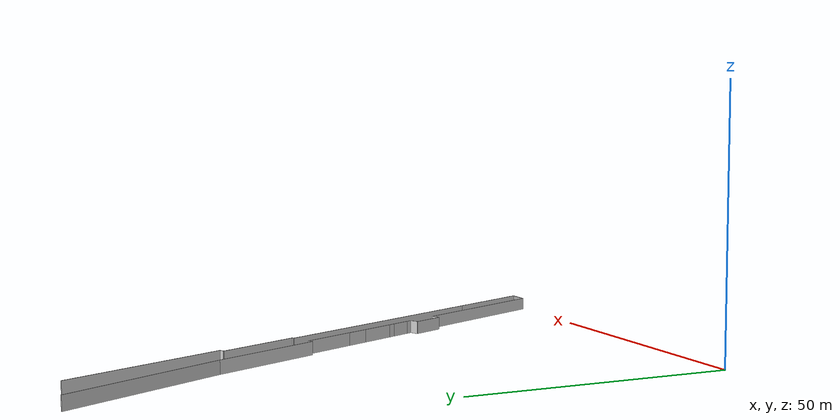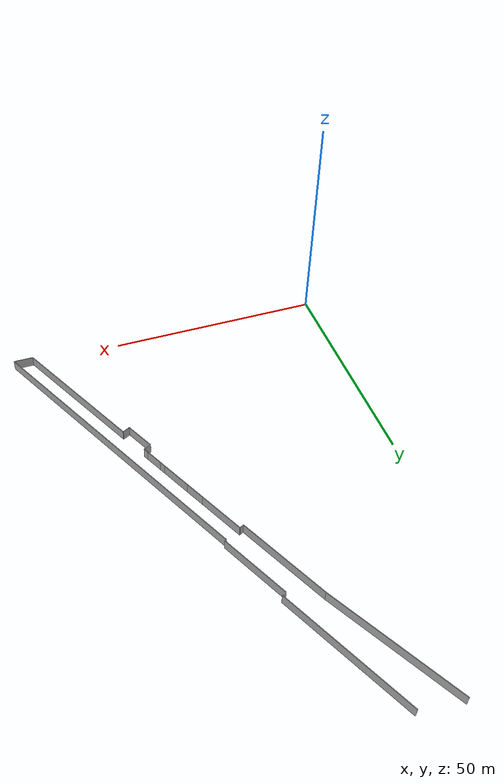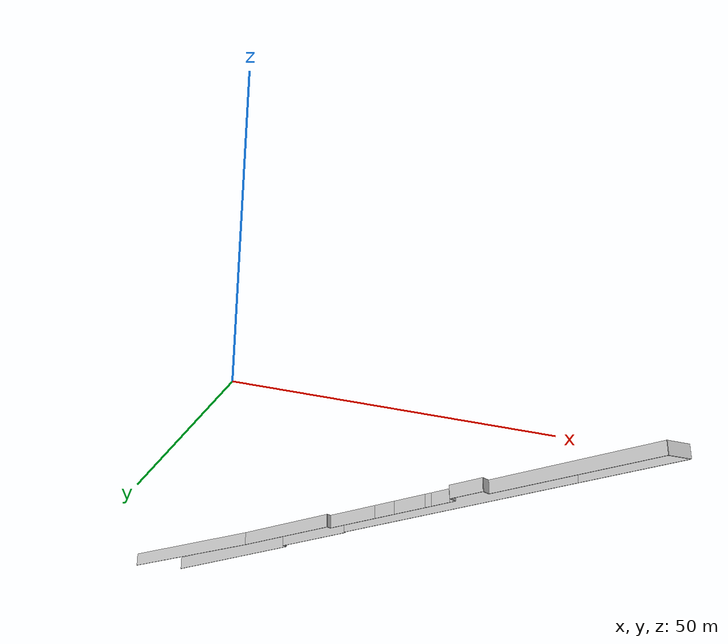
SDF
<?xml version="1.0" ?>
<sdf version="1.6">
  <model name="sps_0400">
    <pose frame="">0 0 0 0 -0 0</pose>
    <static>1</static>
    <self_collide>0</self_collide>
    <allow_auto_disable>0</allow_auto_disable>
    <link name="Wall510">
      <kinematic>0</kinematic>
      <gravity>1</gravity>
      <self_collide>0</self_collide>
      <collision name="collision">
        <geometry>
          <box>
            <size>51.1994 0.15 2.5</size>
          </box>
        </geometry>
        <pose frame="">0 0 0 0 -0 0</pose>
      </collision>
      <visual name="visual">
        <geometry>
          <box>
            <size>51.1994 0.15 2.5</size>
          </box>
        </geometry>
        <pose frame="">0 0 0 0 -0 0</pose>
        <cast_shadows>1</cast_shadows>
        <transparency>0.0</transparency>
      </visual>
      <pose frame="">55.3052 40.8681 1.25 0 0 -1.114</pose>
    </link>
    <link name="Wall511">
      <kinematic>0</kinematic>
      <gravity>1</gravity>
      <self_collide>0</self_collide>
      <collision name="collision">
        <geometry>
          <box>
            <size>19.9372 0.15 2.5</size>
          </box>
        </geometry>
        <pose frame="">0 0 0 0 -0 0</pose>
      </collision>
      <visual name="visual">
        <geometry>
          <box>
            <size>19.9372 0.15 2.5</size>
          </box>
        </geometry>
        <pose frame="">0 0 0 0 -0 0</pose>
        <cast_shadows>1</cast_shadows>
        <transparency>0.0</transparency>
      </visual>
      <pose frame="">70.9934 8.94654 1.25 0 0 -1.114</pose>
    </link>
    <link name="Wall1086">
      <kinematic>0</kinematic>
      <gravity>1</gravity>
      <self_collide>0</self_collide>
      <collision name="collision">
        <geometry>
          <box>
            <size>33.1418 0.15 2.5</size>
          </box>
        </geometry>
        <pose frame="">0 0 0 0 -0 0</pose>
      </collision>
      <visual name="visual">
        <geometry>
          <box>
            <size>33.1418 0.15 2.5</size>
          </box>
        </geometry>
        <pose frame="">0 0 0 0 -0 0</pose>
        <cast_shadows>1</cast_shadows>
        <transparency>0.0</transparency>
      </visual>
      <pose frame="">63.6248 14.872 1.25 0 -0 2.02759</pose>
    </link>
    <link name="Wall1087">
      <kinematic>0</kinematic>
      <gravity>1</gravity>
      <self_collide>0</self_collide>
      <collision name="collision">
        <geometry>
          <box>
            <size>1.79886 0.15 2.5</size>
          </box>
        </geometry>
        <pose frame="">0 0 0 0 -0 0</pose>
      </collision>
      <visual name="visual">
        <geometry>
          <box>
            <size>1.79886 0.15 2.5</size>
          </box>
        </geometry>
        <pose frame="">0 0 0 0 -0 0</pose>
        <cast_shadows>1</cast_shadows>
        <transparency>0.0</transparency>
      </visual>
      <pose frame="">55.5087 29.3472 1.25 0 0 -2.68482</pose>
    </link>
    <link name="Wall1088">
      <kinematic>0</kinematic>
      <gravity>1</gravity>
      <self_collide>0</self_collide>
      <collision name="collision">
        <geometry>
          <box>
            <size>6.99993 0.15 2.5</size>
          </box>
        </geometry>
        <pose frame="">0 0 0 0 -0 0</pose>
      </collision>
      <visual name="visual">
        <geometry>
          <box>
            <size>6.99993 0.15 2.5</size>
          </box>
        </geometry>
        <pose frame="">0 0 0 0 -0 0</pose>
        <cast_shadows>1</cast_shadows>
        <transparency>0.0</transparency>
      </visual>
      <pose frame="">53.1572 32.0914 1.25 0 -0 2.02773</pose>
    </link>
    <link name="Wall1089">
      <kinematic>0</kinematic>
      <gravity>1</gravity>
      <self_collide>0</self_collide>
      <collision name="collision">
        <geometry>
          <box>
            <size>1.79968 0.15 2.5</size>
          </box>
        </geometry>
        <pose frame="">0 0 0 0 -0 0</pose>
      </collision>
      <visual name="visual">
        <geometry>
          <box>
            <size>1.79968 0.15 2.5</size>
          </box>
        </geometry>
        <pose frame="">0 0 0 0 -0 0</pose>
        <cast_shadows>1</cast_shadows>
        <transparency>0.0</transparency>
      </visual>
      <pose frame="">52.4206 35.6292 1.25 0 -0 0.456777</pose>
    </link>
    <link name="Wall1090">
      <kinematic>0</kinematic>
      <gravity>1</gravity>
      <self_collide>0</self_collide>
      <collision name="collision">
        <geometry>
          <box>
            <size>5.19773 0.15 2.5</size>
          </box>
        </geometry>
        <pose frame="">0 0 0 0 -0 0</pose>
      </collision>
      <visual name="visual">
        <geometry>
          <box>
            <size>5.19773 0.15 2.5</size>
          </box>
        </geometry>
        <pose frame="">0 0 0 0 -0 0</pose>
        <cast_shadows>1</cast_shadows>
        <transparency>0.0</transparency>
      </visual>
      <pose frame="">52.0825 38.3588 1.25 0 -0 2.02733</pose>
    </link>
    <link name="Wall1091">
      <kinematic>0</kinematic>
      <gravity>1</gravity>
      <self_collide>0</self_collide>
      <collision name="collision">
        <geometry>
          <box>
            <size>1.38549 0.15 2.5</size>
          </box>
        </geometry>
        <pose frame="">0 0 0 0 -0 0</pose>
      </collision>
      <visual name="visual">
        <geometry>
          <box>
            <size>1.38549 0.15 2.5</size>
          </box>
        </geometry>
        <pose frame="">0 0 0 0 -0 0</pose>
        <cast_shadows>1</cast_shadows>
        <transparency>0.0</transparency>
      </visual>
      <pose frame="">50.6315 41.3133 1.25 0 -0 2.02733</pose>
    </link>
    <link name="Wall1092">
      <kinematic>0</kinematic>
      <gravity>1</gravity>
      <self_collide>0</self_collide>
      <collision name="collision">
        <geometry>
          <box>
            <size>7.0589 0.15 2.5</size>
          </box>
        </geometry>
        <pose frame="">0 0 0 0 -0 0</pose>
      </collision>
      <visual name="visual">
        <geometry>
          <box>
            <size>7.0589 0.15 2.5</size>
          </box>
        </geometry>
        <pose frame="">0 0 0 0 -0 0</pose>
        <cast_shadows>1</cast_shadows>
        <transparency>0.0</transparency>
      </visual>
      <pose frame="">48.7694 45.1027 1.25 0 -0 2.02758</pose>
    </link>
    <link name="Wall1093">
      <kinematic>0</kinematic>
      <gravity>1</gravity>
      <self_collide>0</self_collide>
      <collision name="collision">
        <geometry>
          <box>
            <size>4.57327 0.15 2.5</size>
          </box>
        </geometry>
        <pose frame="">0 0 0 0 -0 0</pose>
      </collision>
      <visual name="visual">
        <geometry>
          <box>
            <size>4.57327 0.15 2.5</size>
          </box>
        </geometry>
        <pose frame="">0 0 0 0 -0 0</pose>
        <cast_shadows>1</cast_shadows>
        <transparency>0.0</transparency>
      </visual>
      <pose frame="">46.2042 50.3225 1.25 0 -0 2.02756</pose>
    </link>
    <link name="Wall1094">
      <kinematic>0</kinematic>
      <gravity>1</gravity>
      <self_collide>0</self_collide>
      <collision name="collision">
        <geometry>
          <box>
            <size>10.8125 0.15 2.5</size>
          </box>
        </geometry>
        <pose frame="">0 0 0 0 -0 0</pose>
      </collision>
      <visual name="visual">
        <geometry>
          <box>
            <size>10.8125 0.15 2.5</size>
          </box>
        </geometry>
        <pose frame="">0 0 0 0 -0 0</pose>
        <cast_shadows>1</cast_shadows>
        <transparency>0.0</transparency>
      </visual>
      <pose frame="">42.8105 57.2264 1.25 0 -0 2.0277</pose>
    </link>
    <link name="Wall1095">
      <kinematic>0</kinematic>
      <gravity>1</gravity>
      <self_collide>0</self_collide>
      <collision name="collision">
        <geometry>
          <box>
            <size>0.999428 0.15 2.5</size>
          </box>
        </geometry>
        <pose frame="">0 0 0 0 -0 0</pose>
      </collision>
      <visual name="visual">
        <geometry>
          <box>
            <size>0.999428 0.15 2.5</size>
          </box>
        </geometry>
        <pose frame="">0 0 0 0 -0 0</pose>
        <cast_shadows>1</cast_shadows>
        <transparency>0.0</transparency>
      </visual>
      <pose frame="">39.977 61.8575 1.25 0 0 -2.68442</pose>
    </link>
    <link name="Wall1096">
      <kinematic>0</kinematic>
      <gravity>1</gravity>
      <self_collide>0</self_collide>
      <collision name="collision">
        <geometry>
          <box>
            <size>21.8095 0.15 2.5</size>
          </box>
        </geometry>
        <pose frame="">0 0 0 0 -0 0</pose>
      </collision>
      <visual name="visual">
        <geometry>
          <box>
            <size>21.8095 0.15 2.5</size>
          </box>
        </geometry>
        <pose frame="">0 0 0 0 -0 0</pose>
        <cast_shadows>1</cast_shadows>
        <transparency>0.0</transparency>
      </visual>
      <pose frame="">34.7176 71.423 1.25 0 -0 2.02771</pose>
    </link>
    <link name="Wall1097">
      <kinematic>0</kinematic>
      <gravity>1</gravity>
      <self_collide>0</self_collide>
      <collision name="collision">
        <geometry>
          <box>
            <size>31.141 0.15 2.5</size>
          </box>
        </geometry>
        <pose frame="">0 0 0 0 -0 0</pose>
      </collision>
      <visual name="visual">
        <geometry>
          <box>
            <size>31.141 0.15 2.5</size>
          </box>
        </geometry>
        <pose frame="">0 0 0 0 -0 0</pose>
        <cast_shadows>1</cast_shadows>
        <transparency>0.0</transparency>
      </visual>
      <pose frame="">22.2425 94.7628 1.25 0 -0 2.08543</pose>
    </link>
    <link name="Wall1119">
      <kinematic>0</kinematic>
      <gravity>1</gravity>
      <self_collide>0</self_collide>
      <collision name="collision">
        <geometry>
          <box>
            <size>31.4311 0.15 2.5</size>
          </box>
        </geometry>
        <pose frame="">0 0 0 0 -0 0</pose>
      </collision>
      <visual name="visual">
        <geometry>
          <box>
            <size>31.4311 0.15 2.5</size>
          </box>
        </geometry>
        <pose frame="">0 0 0 0 -0 0</pose>
        <cast_shadows>1</cast_shadows>
        <transparency>0.0</transparency>
      </visual>
      <pose frame="">31.0781 93.336 1.25 0 0 -1.11389</pose>
    </link>
    <link name="Wall1120">
      <kinematic>0</kinematic>
      <gravity>1</gravity>
      <self_collide>0</self_collide>
      <collision name="collision">
        <geometry>
          <box>
            <size>1 0.15 2.5</size>
          </box>
        </geometry>
        <pose frame="">0 0 0 0 -0 0</pose>
      </collision>
      <visual name="visual">
        <geometry>
          <box>
            <size>1 0.15 2.5</size>
          </box>
        </geometry>
        <pose frame="">0 0 0 0 -0 0</pose>
        <cast_shadows>1</cast_shadows>
        <transparency>0.0</transparency>
      </visual>
      <pose frame="">37.5627 79.0119 1.25 0 0 -2.68463</pose>
    </link>
    <link name="Wall1121">
      <kinematic>0</kinematic>
      <gravity>1</gravity>
      <self_collide>0</self_collide>
      <collision name="collision">
        <geometry>
          <box>
            <size>16.4591 0.15 2.5</size>
          </box>
        </geometry>
        <pose frame="">0 0 0 0 -0 0</pose>
      </collision>
      <visual name="visual">
        <geometry>
          <box>
            <size>16.4591 0.15 2.5</size>
          </box>
        </geometry>
        <pose frame="">0 0 0 0 -0 0</pose>
        <cast_shadows>1</cast_shadows>
        <transparency>0.0</transparency>
      </visual>
      <pose frame="">40.7441 71.4056 1.25 0 0 -1.11397</pose>
    </link>
    <link name="Wall1122">
      <kinematic>0</kinematic>
      <gravity>1</gravity>
      <self_collide>0</self_collide>
      <collision name="collision">
        <geometry>
          <box>
            <size>0.399235 0.15 2.5</size>
          </box>
        </geometry>
        <pose frame="">0 0 0 0 -0 0</pose>
      </collision>
      <visual name="visual">
        <geometry>
          <box>
            <size>0.399235 0.15 2.5</size>
          </box>
        </geometry>
        <pose frame="">0 0 0 0 -0 0</pose>
        <cast_shadows>1</cast_shadows>
        <transparency>0.0</transparency>
      </visual>
      <pose frame="">44.1952 63.9317 1.25 0 0 -2.68396</pose>
    </link>
    <link name="Wall1123">
      <kinematic>0</kinematic>
      <gravity>1</gravity>
      <self_collide>0</self_collide>
      <collision name="collision">
        <geometry>
          <box>
            <size>71.1371 0.15 2.5</size>
          </box>
        </geometry>
        <pose frame="">0 0 0 0 -0 0</pose>
      </collision>
      <visual name="visual">
        <geometry>
          <box>
            <size>71.1371 0.15 2.5</size>
          </box>
        </geometry>
        <pose frame="">0 0 0 0 -0 0</pose>
        <cast_shadows>1</cast_shadows>
        <transparency>0.0</transparency>
      </visual>
      <pose frame="">59.7044 31.9218 1.25 0 0 -1.114</pose>
    </link>
    <link name="Wall1124">
      <kinematic>0</kinematic>
      <gravity>1</gravity>
      <self_collide>0</self_collide>
      <collision name="collision">
        <geometry>
          <box>
            <size>4.45901 0.15 2.5</size>
          </box>
        </geometry>
        <pose frame="">0 0 0 0 -0 0</pose>
      </collision>
      <visual name="visual">
        <geometry>
          <box>
            <size>4.45901 0.15 2.5</size>
          </box>
        </geometry>
        <pose frame="">0 0 0 0 -0 0</pose>
        <cast_shadows>1</cast_shadows>
        <transparency>0.0</transparency>
      </visual>
      <pose frame="">73.1632 0 1.25 0 -0 3.14159</pose>
    </link>
    <link name="Wall7389">
      <kinematic>0</kinematic>
      <gravity>1</gravity>
      <self_collide>0</self_collide>
      <collision name="collision">
        <geometry>
          <box>
            <size>33.1419 0.15 2.5</size>
          </box>
        </geometry>
        <pose frame="">0 0 0 0 -0 0</pose>
      </collision>
      <visual name="visual">
        <geometry>
          <box>
            <size>33.1419 0.15 2.5</size>
          </box>
        </geometry>
        <pose frame="">0 0 0 0 -0 0</pose>
        <cast_shadows>1</cast_shadows>
        <transparency>0.0</transparency>
      </visual>
      <pose frame="">63.625 14.872 1.25 0 -0 2.02759</pose>
    </link>
    <link name="Wall7390">
      <kinematic>0</kinematic>
      <gravity>1</gravity>
      <self_collide>0</self_collide>
      <collision name="collision">
        <geometry>
          <box>
            <size>1.79864 0.15 2.5</size>
          </box>
        </geometry>
        <pose frame="">0 0 0 0 -0 0</pose>
      </collision>
      <visual name="visual">
        <geometry>
          <box>
            <size>1.79864 0.15 2.5</size>
          </box>
        </geometry>
        <pose frame="">0 0 0 0 -0 0</pose>
        <cast_shadows>1</cast_shadows>
        <transparency>0.0</transparency>
      </visual>
      <pose frame="">55.509 29.3472 1.25 0 0 -2.68476</pose>
    </link>
    <link name="Wall7391">
      <kinematic>0</kinematic>
      <gravity>1</gravity>
      <self_collide>0</self_collide>
      <collision name="collision">
        <geometry>
          <box>
            <size>7.00004 0.15 2.5</size>
          </box>
        </geometry>
        <pose frame="">0 0 0 0 -0 0</pose>
      </collision>
      <visual name="visual">
        <geometry>
          <box>
            <size>7.00004 0.15 2.5</size>
          </box>
        </geometry>
        <pose frame="">0 0 0 0 -0 0</pose>
        <cast_shadows>1</cast_shadows>
        <transparency>0.0</transparency>
      </visual>
      <pose frame="">53.1576 32.0914 1.25 0 -0 2.02776</pose>
    </link>
    <link name="Wall7392">
      <kinematic>0</kinematic>
      <gravity>1</gravity>
      <self_collide>0</self_collide>
      <collision name="collision">
        <geometry>
          <box>
            <size>1.7999 0.15 2.5</size>
          </box>
        </geometry>
        <pose frame="">0 0 0 0 -0 0</pose>
      </collision>
      <visual name="visual">
        <geometry>
          <box>
            <size>1.7999 0.15 2.5</size>
          </box>
        </geometry>
        <pose frame="">0 0 0 0 -0 0</pose>
        <cast_shadows>1</cast_shadows>
        <transparency>0.0</transparency>
      </visual>
      <pose frame="">52.421 35.6292 1.25 0 -0 0.456717</pose>
    </link>
    <link name="Wall7393">
      <kinematic>0</kinematic>
      <gravity>1</gravity>
      <self_collide>0</self_collide>
      <collision name="collision">
        <geometry>
          <box>
            <size>5.19813 0.15 2.5</size>
          </box>
        </geometry>
        <pose frame="">0 0 0 0 -0 0</pose>
      </collision>
      <visual name="visual">
        <geometry>
          <box>
            <size>5.19813 0.15 2.5</size>
          </box>
        </geometry>
        <pose frame="">0 0 0 0 -0 0</pose>
        <cast_shadows>1</cast_shadows>
        <transparency>0.0</transparency>
      </visual>
      <pose frame="">52.0821 38.3586 1.25 0 -0 2.02765</pose>
    </link>
  </model>
</sdf>
